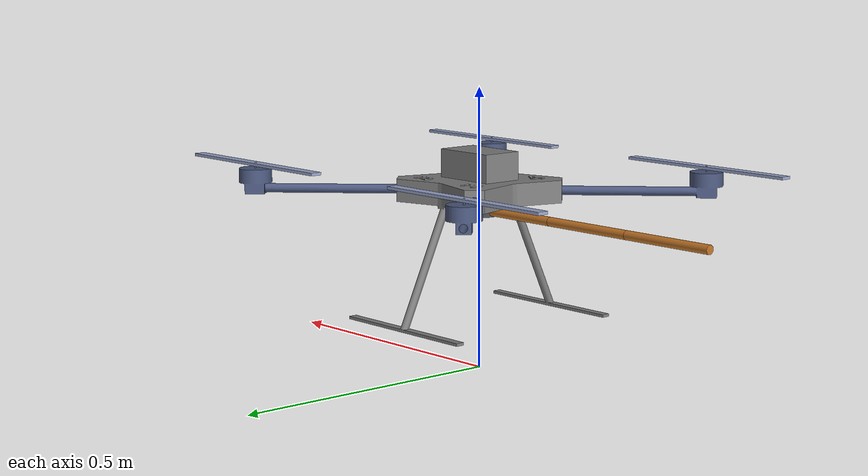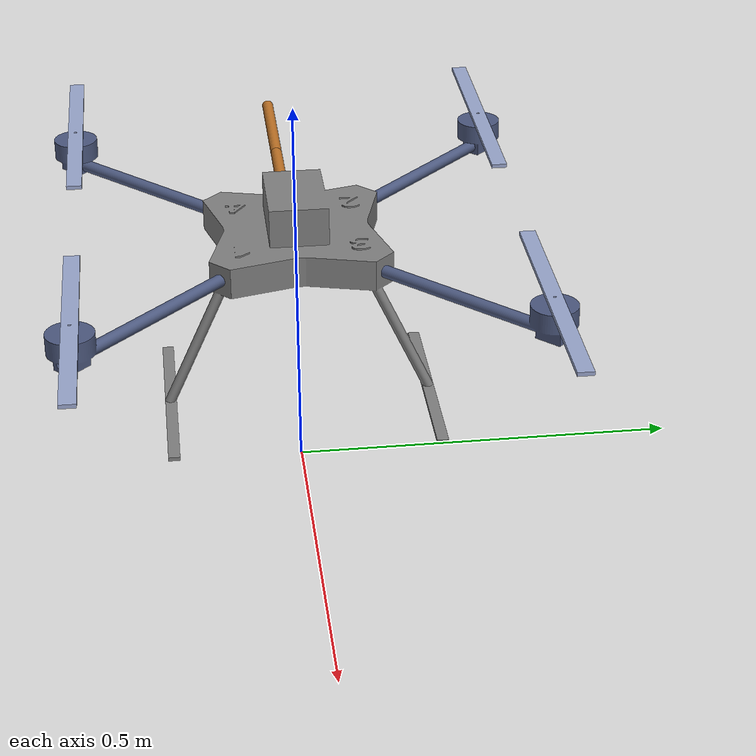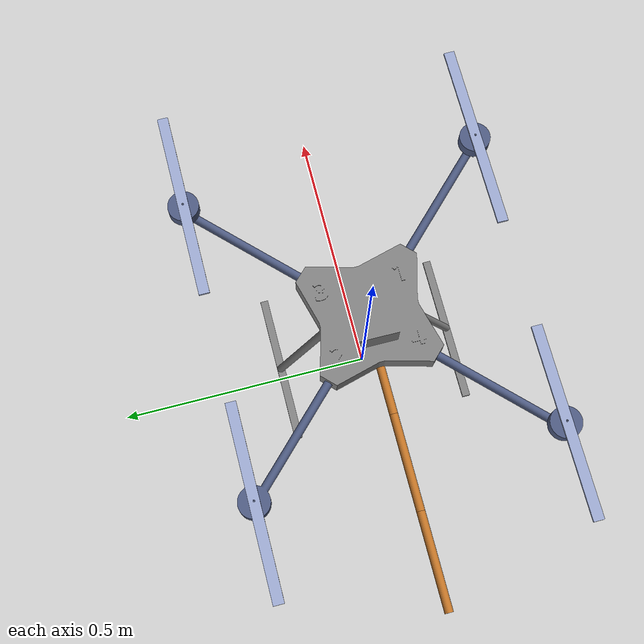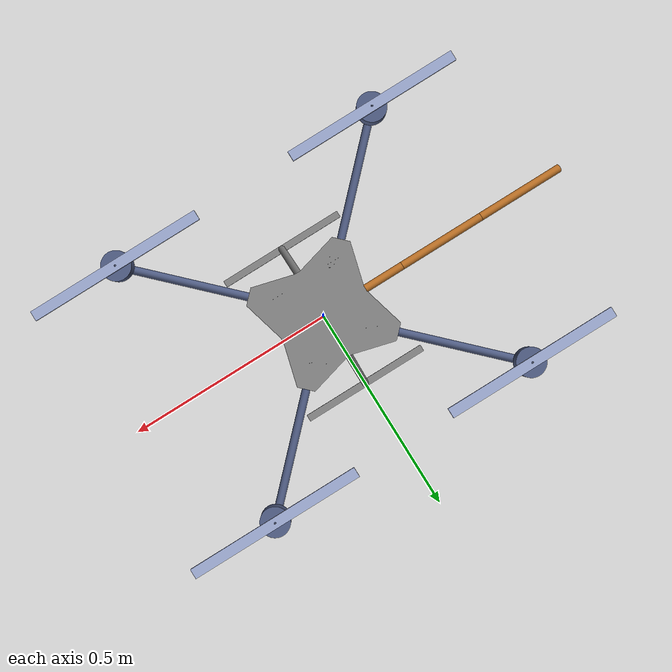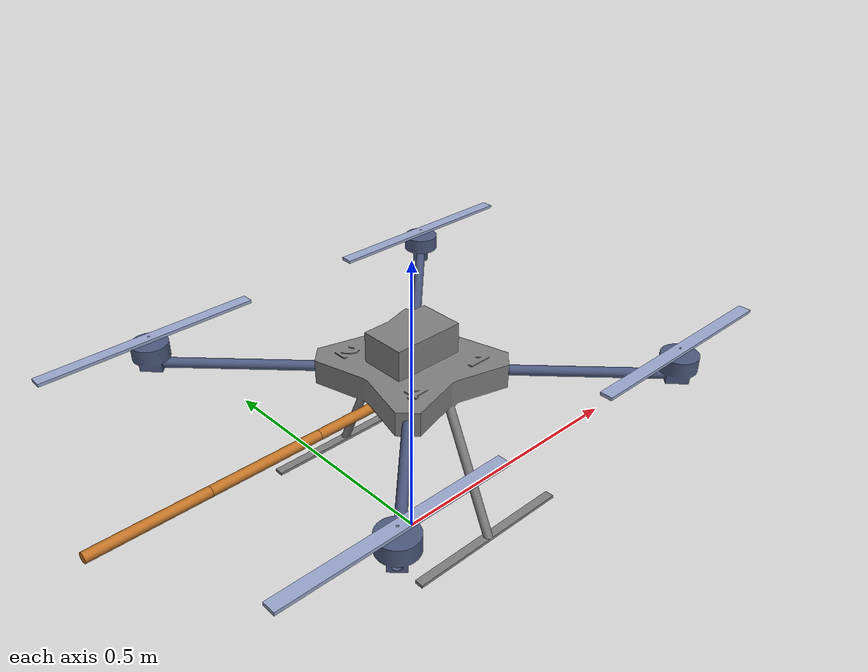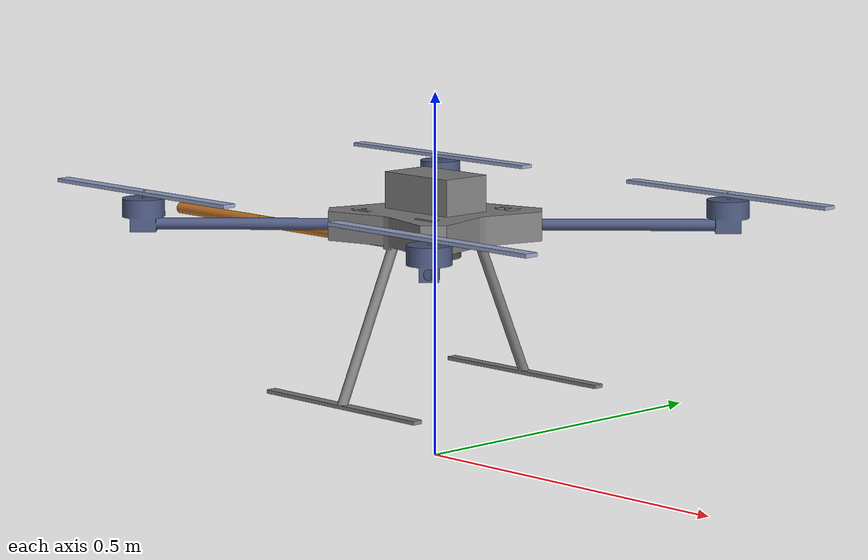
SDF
<?xml version="1.0" encoding="UTF-8"?>
<sdf version='1.9'>
  <model name='hillstar_rigid_arm'>
    <include merge='true'>
      <uri>model://hillstar</uri>
    </include>
    <include merge='true'>
      <uri>model://rigid_arm_3link</uri>
    </include>

    <joint name="rigid_arm_joint_1" type="revolute">
      <parent>base_link</parent>
      <child>rigid_arm_3link/link_1</child>
      <axis>
        <xyz>0 -1 0</xyz>
        <limit>
          <lower>-2.0944</lower>
          <upper>2.0944</upper>
          <effort>0.6</effort>
          <velocity>3.0</velocity>
        </limit>
        <dynamics>
          <damping>0.05</damping>
          <friction>0.01</friction>
        </dynamics>
      </axis>
    </joint>
  </model>
</sdf>
